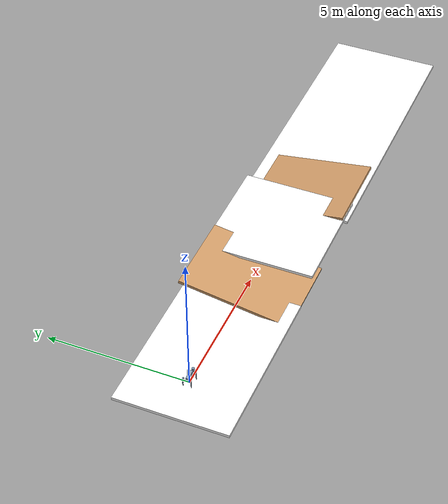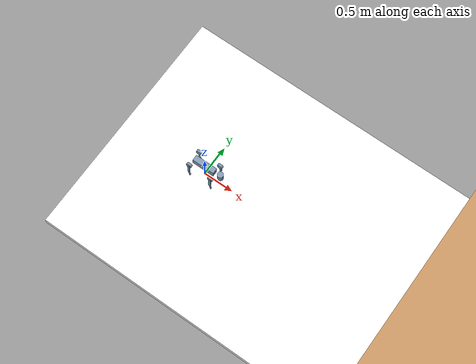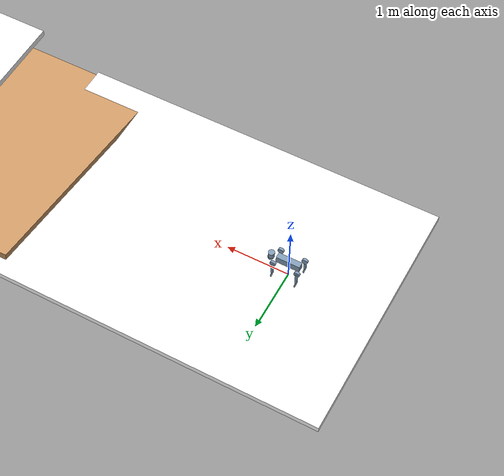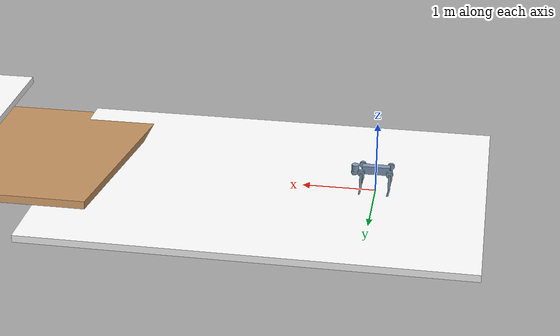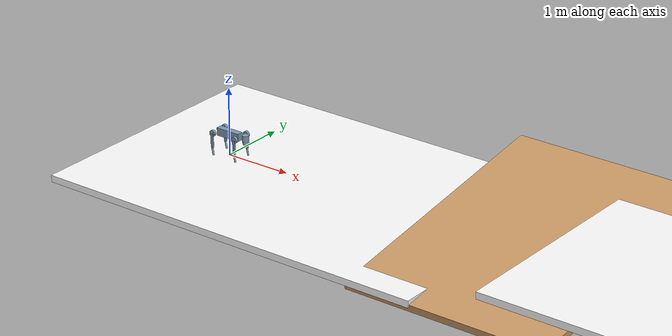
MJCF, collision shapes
<mujoco model="go2_slope">
  <compiler angle="radian" meshdir="meshes" autolimits="true"/>
  <size njmax="5000" nconmax="10000"/>
  <option timestep="0.001"/>

  <default>
    <light castshadow="false" diffuse="1 1 1"/>
    <camera fovy="60"/>
    <default class="visual">
      <geom contype="0" conaffinity="0" group="1" type="mesh" rgba="0.9 0.9 0.9 1.0"/>
    </default>
    <default class="collision">
      <geom contype="1" conaffinity="1" friction="1.0 0.3 0.3" rgba="0.5 0.6 0.7 0" margin="0.001" group="0"/>
    </default>
    <default class="foot">
      <geom priority="1" condim="3" friction="0.7 0.005 0.0001"/>
    </default>
    <joint damping="0.1" armature="0.01"/>
  </default>

  <visual>
    <rgba com="0.502 1.0 0 1.0" contactpoint="0.5 0.1 0.8 0.4" contactforce="0.2 0.98 0.2 0.8"/>
    <scale com="0.2" forcewidth="0.05" contactwidth="0.10" contactheight="0.04"/>
  </visual>

  <asset>
    <material name="metal" rgba=".9 .95 .95 1" />
    <material name="black" rgba="0 0 0 1" />
    <material name="white" rgba="1 1 1 1" />
    <material name="gray" rgba="0.671705 0.692426 0.774270 1" />
    <material name="slope" rgba="0.8 0.6 0.4 1" />
    <texture type="skybox" builtin="gradient" width="512" height="512" rgb1="1.0 1.0 1.0" rgb2="1.0 1.0 1.0"/>
    <texture name="plane" type="2d" builtin="flat" rgb1="1 1 1" rgb2="1 1 1" width="512" height="512" mark="cross" markrgb="0 0 0"/>
    <material name="plane" reflectance="0.0" texture="plane" texrepeat="3 3" texuniform="true"/>

    <mesh file="base_0.obj" />
    <mesh file="base_1.obj" />
    <mesh file="base_2.obj" />
    <mesh file="base_3.obj" />
    <mesh file="base_4.obj" />
    <mesh file="hip_0.obj" />
    <mesh file="hip_1.obj" />
    <mesh file="thigh_0.obj" />
    <mesh file="thigh_1.obj" />
    <mesh file="thigh_mirror_0.obj" />
    <mesh file="thigh_mirror_1.obj" />
    <mesh file="calf_0.obj" />
    <mesh file="calf_1.obj" />
    <mesh file="calf_mirror_0.obj" />
    <mesh file="calf_mirror_1.obj" />
    <mesh file="foot.obj" />
  </asset>

  <worldbody>
    <!-- Slope terrain instead of flat plane -->
    <geom name="flat1" type="box" size="3.0 2.0 0.05" pos="1.5 0 -0.05" material="plane" condim="3" conaffinity="1" contype="1"/>
    <geom name="slope_up" type="box" size="1.5 2.0 0.05" pos="5.0 0 0.2" euler="0.1571 0 0" material="slope" condim="3" conaffinity="1" contype="1"/>
    <geom name="flat2" type="box" size="2.0 2.0 0.05" pos="7.5 0 0.4" material="plane" condim="3" conaffinity="1" contype="1"/>
    <geom name="slope_down" type="box" size="1.5 2.0 0.05" pos="10.0 0 0.2" euler="-0.1571 0 0" material="slope" condim="3" conaffinity="1" contype="1"/>
    <geom name="flat3" type="box" size="5.0 2.0 0.05" pos="14.0 0 -0.05" material="plane" condim="3" conaffinity="1" contype="1"/>

    <light directional="true" diffuse=".8 .8 .8" pos="0 0 10" dir="0 0 -10"/>
    <camera name="track" mode="trackcom" pos="0 -2.3 1.6" xyaxes="1 0 0 0 0.707 0.707"/>

    <!-- Base link (trunk) with correct initial height -->
    <body name="trunk" pos="0 0 0.32" childclass="visual">
      <inertial pos="0.021112 0 -0.005366" quat="-0.000543471 0.713435 -0.00173769 0.700719" mass="6.921" diaginertia="0.107027 0.0980771 0.0244531" />
      <freejoint name="floating_base_joint"/>

      <!-- Visual meshes -->
      <geom mesh="base_0" material="black" />
      <geom mesh="base_1" material="black" />
      <geom mesh="base_2" material="black" />
      <geom mesh="base_3" material="white" />
      <geom mesh="base_4" material="gray" />

      <!-- Collision geoms -->
      <geom name="base1_collision" size="0.1881 0.04675 0.057" type="box" class="collision" />
      <geom name="base2_collision" size="0.05 0.045" pos="0.285 0 0.01" type="cylinder" class="collision" />
      <geom name="base3_collision" size="0.047" pos="0.293 0 -0.06" type="sphere" class="collision" />

      <!-- IMU site -->
      <site name="imu" pos="-0.02557 0 0.04232" group="5"/>

      <!-- FL leg -->
      <body name="FL_hip" pos="0.1934 0.0465 0">
        <inertial pos="-0.0054 0.00194 -0.000105" quat="0.497014 0.499245 0.505462 0.498237" mass="0.678" diaginertia="0.00088403 0.000596003 0.000479967" />
        <joint name="FL_hip_joint" axis="1 0 0" range="-1.0472 1.0472"/>
        <geom mesh="hip_0" material="metal" />
        <geom mesh="hip_1" material="gray" />
        <geom name="FL_hip_collision" size="0.046 0.02" pos="0 0.08 0" quat="1 1 0 0" type="cylinder" class="collision" />
        <body name="FL_thigh" pos="0 0.0955 0">
          <inertial pos="-0.00374 -0.0223 -0.0327" quat="0.829533 0.0847635 -0.0200632 0.551623" mass="1.152" diaginertia="0.00594973 0.00584149 0.000878787" />
          <joint name="FL_thigh_joint" axis="0 1 0" range="-1.5708 3.4907"/>
          <geom mesh="thigh_0" material="metal" />
          <geom mesh="thigh_1" material="gray" />
          <geom name="FL_thigh_collision" size="0.1065 0.01225 0.017" pos="0 0 -0.1065" quat="0.707107 0 0.707107 0" type="box" class="collision" />
          <body name="FL_calf" pos="0 0 -0.213">
            <inertial pos="0.00629595 -0.000622121 -0.141417" quat="0.710672 0.00154099 -0.00450087 0.703508" mass="0.241352" diaginertia="0.0014901 0.00146356 5.31397e-05" />
            <joint name="FL_calf_joint" axis="0 1 0" range="-2.7227 -0.83776"/>
            <geom mesh="calf_0" material="gray" />
            <geom mesh="calf_1" material="black" />
            <geom name="FL_calf1_collision" size="0.012 0.06" pos="0.008 0 -0.06" quat="0.994493 0 -0.104807 0" type="cylinder" class="collision" />
            <geom name="FL_calf2_collision" size="0.011 0.0325" pos="0.02 0 -0.148" quat="0.999688 0 0.0249974 0" type="cylinder" class="collision" />
            <!-- Foot geom for contact -->
            <geom name="FL_foot_collision" pos="0 0 -0.213" type="sphere" size="0.022" class="foot"/>
            <!-- Visual foot (non-collidable) -->
            <geom pos="0 0 -0.213" mesh="foot" class="visual" material="black" />
            <!-- Sensor foot (for contact detection) -->
            <geom name="fl_foot" pos="0 0 -0.213" type="sphere" size="0.022" contype="0" conaffinity="0"/>
            <site name="FL" pos="0 0 -0.213" type="sphere" size="0.022"/>
          </body>
        </body>
      </body>

      <!-- FR leg -->
      <body name="FR_hip" pos="0.1934 -0.0465 0">
        <inertial pos="-0.0054 -0.00194 -0.000105" quat="0.498237 0.505462 0.499245 0.497014" mass="0.678" diaginertia="0.00088403 0.000596003 0.000479967" />
        <joint name="FR_hip_joint" axis="1 0 0" range="-1.0472 1.0472"/>
        <geom mesh="hip_0" material="metal" quat="4.63268e-05 1 0 0" />
        <geom mesh="hip_1" material="gray" quat="4.63268e-05 1 0 0" />
        <geom name="FR_hip_collision" size="0.046 0.02" pos="0 -0.08 0" quat="0.707107 0.707107 0 0" type="cylinder" class="collision" />
        <body name="FR_thigh" pos="0 -0.0955 0">
          <inertial pos="-0.00374 0.0223 -0.0327" quat="0.551623 -0.0200632 0.0847635 0.829533" mass="1.152" diaginertia="0.00594973 0.00584149 0.000878787" />
          <joint name="FR_thigh_joint" axis="0 1 0" range="-1.5708 3.4907"/>
          <geom mesh="thigh_mirror_0" material="metal" />
          <geom mesh="thigh_mirror_1" material="gray" />
          <geom name="FR_thigh_collision" size="0.1065 0.01225 0.017" pos="0 0 -0.1065" quat="0.707107 0 0.707107 0" type="box" class="collision" />
          <body name="FR_calf" pos="0 0 -0.213">
            <inertial pos="0.00629595 0.000622121 -0.141417" quat="0.703508 -0.00450087 0.00154099 0.710672" mass="0.241352" diaginertia="0.0014901 0.00146356 5.31397e-05" />
            <joint name="FR_calf_joint" axis="0 1 0" range="-2.7227 -0.83776"/>
            <geom mesh="calf_mirror_0" material="gray" />
            <geom mesh="calf_mirror_1" material="black" />
            <geom name="FR_calf1_collision" size="0.013 0.06" pos="0.01 0 -0.06" quat="0.995004 0 -0.0998334 0" type="cylinder" class="collision" />
            <geom name="FR_calf2_collision" size="0.011 0.0325" pos="0.02 0 -0.148" quat="0.999688 0 0.0249974 0" type="cylinder" class="collision" />
            <geom name="FR_foot_collision" pos="0 0 -0.213" type="sphere" size="0.022" class="foot"/>
            <geom pos="0 0 -0.213" mesh="foot" class="visual" material="black" />
            <geom name="fr_foot" pos="0 0 -0.213" type="sphere" size="0.022" contype="0" conaffinity="0"/>
            <site name="FR" pos="0 0 -0.213" type="sphere" size="0.022"/>
          </body>
        </body>
      </body>

      <!-- RL leg -->
      <body name="RL_hip" pos="-0.1934 0.0465 0">
        <inertial pos="0.0054 0.00194 -0.000105" quat="0.505462 0.498237 0.497014 0.499245" mass="0.678" diaginertia="0.00088403 0.000596003 0.000479967" />
        <joint name="RL_hip_joint" axis="1 0 0" range="-1.0472 1.0472"/>
        <geom mesh="hip_0" material="metal" quat="4.63268e-05 0 1 0" />
        <geom mesh="hip_1" material="gray" quat="4.63268e-05 0 1 0" />
        <geom name="RL_hip_collision" size="0.046 0.02" pos="0 0.08 0" quat="0.707107 0.707107 0 0" type="cylinder" class="collision" />
        <body name="RL_thigh" pos="0 0.0955 0">
          <inertial pos="-0.00374 -0.0223 -0.0327" quat="0.829533 0.0847635 -0.0200632 0.551623" mass="1.152" diaginertia="0.00594973 0.00584149 0.000878787" />
          <joint name="RL_thigh_joint" axis="0 1 0" range="-0.5236 4.5379"/>
          <geom mesh="thigh_0" material="metal" />
          <geom mesh="thigh_1" material="gray" />
          <geom name="RL_thigh_collision" size="0.1065 0.01225 0.017" pos="0 0 -0.1065" quat="0.707107 0 0.707107 0" type="box" class="collision" />
          <body name="RL_calf" pos="0 0 -0.213">
            <inertial pos="0.00629595 -0.000622121 -0.141417" quat="0.710672 0.00154099 -0.00450087 0.703508" mass="0.241352" diaginertia="0.0014901 0.00146356 5.31397e-05" />
            <joint name="RL_calf_joint" axis="0 1 0" range="-2.7227 -0.83776"/>
            <geom mesh="calf_0" material="gray" />
            <geom mesh="calf_1" material="black" />
            <geom name="RL_calf1_collision" size="0.013 0.06" pos="0.01 0 -0.06" quat="0.995004 0 -0.0998334 0" type="cylinder" class="collision" />
            <geom name="RL_calf2_collision" size="0.011 0.0325" pos="0.02 0 -0.148" quat="0.999688 0 0.0249974 0" type="cylinder" class="collision" />
            <geom name="RL_foot_collision" pos="0 0 -0.213" type="sphere" size="0.022" class="foot"/>
            <geom pos="0 0 -0.213" mesh="foot" class="visual" material="black" />
            <geom name="rl_foot" pos="0 0 -0.213" type="sphere" size="0.022" contype="0" conaffinity="0"/>
            <site name="RL" pos="0 0 -0.213" type="sphere" size="0.022"/>
          </body>
        </body>
      </body>

      <!-- RR leg -->
      <body name="RR_hip" pos="-0.1934 -0.0465 0">
        <inertial pos="0.0054 -0.00194 -0.000105" quat="0.499245 0.497014 0.498237 0.505462" mass="0.678" diaginertia="0.00088403 0.000596003 0.000479967" />
        <joint name="RR_hip_joint" axis="1 0 0" range="-1.0472 1.0472"/>
        <geom mesh="hip_0" material="metal" quat="2.14617e-09 4.63268e-05 4.63268e-05 -1" />
        <geom mesh="hip_1" material="gray" quat="2.14617e-09 4.63268e-05 4.63268e-05 -1" />
        <geom name="RR_hip_collision" size="0.046 0.02" pos="0 -0.08 0" quat="0.707107 0.707107 0 0" type="cylinder" class="collision" />
        <body name="RR_thigh" pos="0 -0.0955 0">
          <inertial pos="-0.00374 0.0223 -0.0327" quat="0.551623 -0.0200632 0.0847635 0.829533" mass="1.152" diaginertia="0.00594973 0.00584149 0.000878787" />
          <joint name="RR_thigh_joint" axis="0 1 0" range="-0.5236 4.5379"/>
          <geom mesh="thigh_mirror_0" material="metal" />
          <geom mesh="thigh_mirror_1" material="gray" />
          <geom name="RR_thigh_collision" size="0.1065 0.01225 0.017" pos="0 0 -0.1065" quat="0.707107 0 0.707107 0" type="box" class="collision" />
          <body name="RR_calf" pos="0 0 -0.213">
            <inertial pos="0.00629595 0.000622121 -0.141417" quat="0.703508 -0.00450087 0.00154099 0.710672" mass="0.241352" diaginertia="0.0014901 0.00146356 5.31397e-05" />
            <joint name="RR_calf_joint" axis="0 1 0" range="-2.7227 -0.83776"/>
            <geom mesh="calf_mirror_0" material="gray" />
            <geom mesh="calf_mirror_1" material="black" />
            <geom name="RR_calf1_collision" size="0.013 0.06" pos="0.01 0 -0.06" quat="0.995004 0 -0.0998334 0" type="cylinder" class="collision" />
            <geom name="RR_calf2_collision" size="0.011 0.0325" pos="0.02 0 -0.148" quat="0.999688 0 0.0249974 0" type="cylinder" class="collision" />
            <geom name="RR_foot_collision" pos="0 0 -0.213" type="sphere" size="0.022" class="foot"/>
            <geom pos="0 0 -0.213" mesh="foot" class="visual" material="black" />
            <geom name="rr_foot" pos="0 0 -0.213" type="sphere" size="0.022" contype="0" conaffinity="0"/>
            <site name="RR" pos="0 0 -0.213" type="sphere" size="0.022"/>
          </body>
        </body>
      </body>
    </body>
  </worldbody>

  <actuator>
    <motor name="FL_hip" gear="1" joint="FL_hip_joint"/>
    <motor name="FL_thigh" gear="1" joint="FL_thigh_joint"/>
    <motor name="FL_calf" gear="1" joint="FL_calf_joint"/>
    <motor name="FR_hip" gear="1" joint="FR_hip_joint"/>
    <motor name="FR_thigh" gear="1" joint="FR_thigh_joint"/>
    <motor name="FR_calf" gear="1" joint="FR_calf_joint"/>
    <motor name="RL_hip" gear="1" joint="RL_hip_joint"/>
    <motor name="RL_thigh" gear="1" joint="RL_thigh_joint"/>
    <motor name="RL_calf" gear="1" joint="RL_calf_joint"/>
    <motor name="RR_hip" gear="1" joint="RR_hip_joint"/>
    <motor name="RR_thigh" gear="1" joint="RR_thigh_joint"/>
    <motor name="RR_calf" gear="1" joint="RR_calf_joint"/>
  </actuator>

  <sensor>
    <framequat name="Body_Quat" objtype="site" objname="imu"/>
    <gyro name="Body_Gyro" site="imu"/>
    <accelerometer name="Body_Acc" site="imu"/>

    <jointpos name="FL_hip_pos" joint="FL_hip_joint"/>
    <jointpos name="FL_thigh_pos" joint="FL_thigh_joint"/>
    <jointpos name="FL_calf_pos" joint="FL_calf_joint"/>
    <jointpos name="FR_hip_pos" joint="FR_hip_joint"/>
    <jointpos name="FR_thigh_pos" joint="FR_thigh_joint"/>
    <jointpos name="FR_calf_pos" joint="FR_calf_joint"/>
    <jointpos name="RL_hip_pos" joint="RL_hip_joint"/>
    <jointpos name="RL_thigh_pos" joint="RL_thigh_joint"/>
    <jointpos name="RL_calf_pos" joint="RL_calf_joint"/>
    <jointpos name="RR_hip_pos" joint="RR_hip_joint"/>
    <jointpos name="RR_thigh_pos" joint="RR_thigh_joint"/>
    <jointpos name="RR_calf_pos" joint="RR_calf_joint"/>

    <jointvel name="FL_hip_vel" joint="FL_hip_joint"/>
    <jointvel name="FL_thigh_vel" joint="FL_thigh_joint"/>
    <jointvel name="FL_calf_vel" joint="FL_calf_joint"/>
    <jointvel name="FR_hip_vel" joint="FR_hip_joint"/>
    <jointvel name="FR_thigh_vel" joint="FR_thigh_joint"/>
    <jointvel name="FR_calf_vel" joint="FR_calf_joint"/>
    <jointvel name="RL_hip_vel" joint="RL_hip_joint"/>
    <jointvel name="RL_thigh_vel" joint="RL_thigh_joint"/>
    <jointvel name="RL_calf_vel" joint="RL_calf_joint"/>
    <jointvel name="RR_hip_vel" joint="RR_hip_joint"/>
    <jointvel name="RR_thigh_vel" joint="RR_thigh_joint"/>
    <jointvel name="RR_calf_vel" joint="RR_calf_joint"/>

    <touch name="fl_touch" site="FL"/>
    <touch name="fr_touch" site="FR"/>
    <touch name="rl_touch" site="RL"/>
    <touch name="rr_touch" site="RR"/>
  </sensor>
</mujoco>
